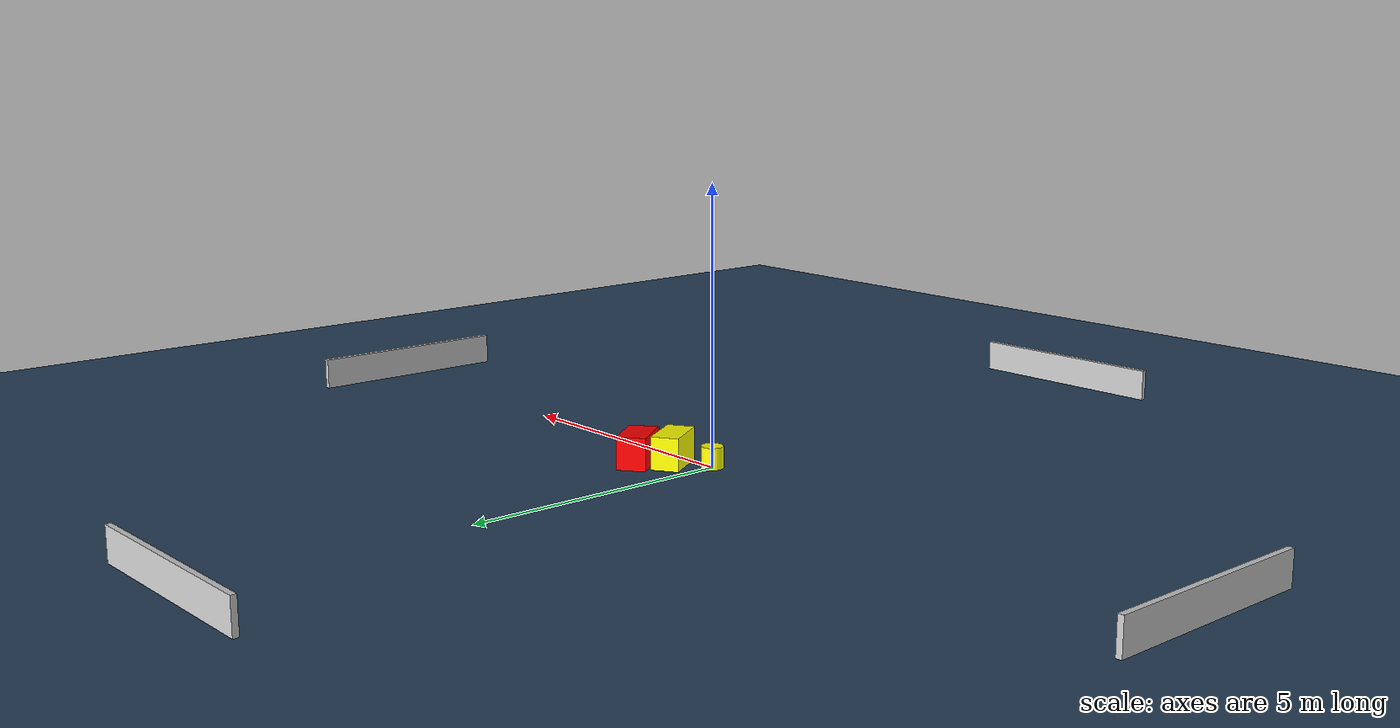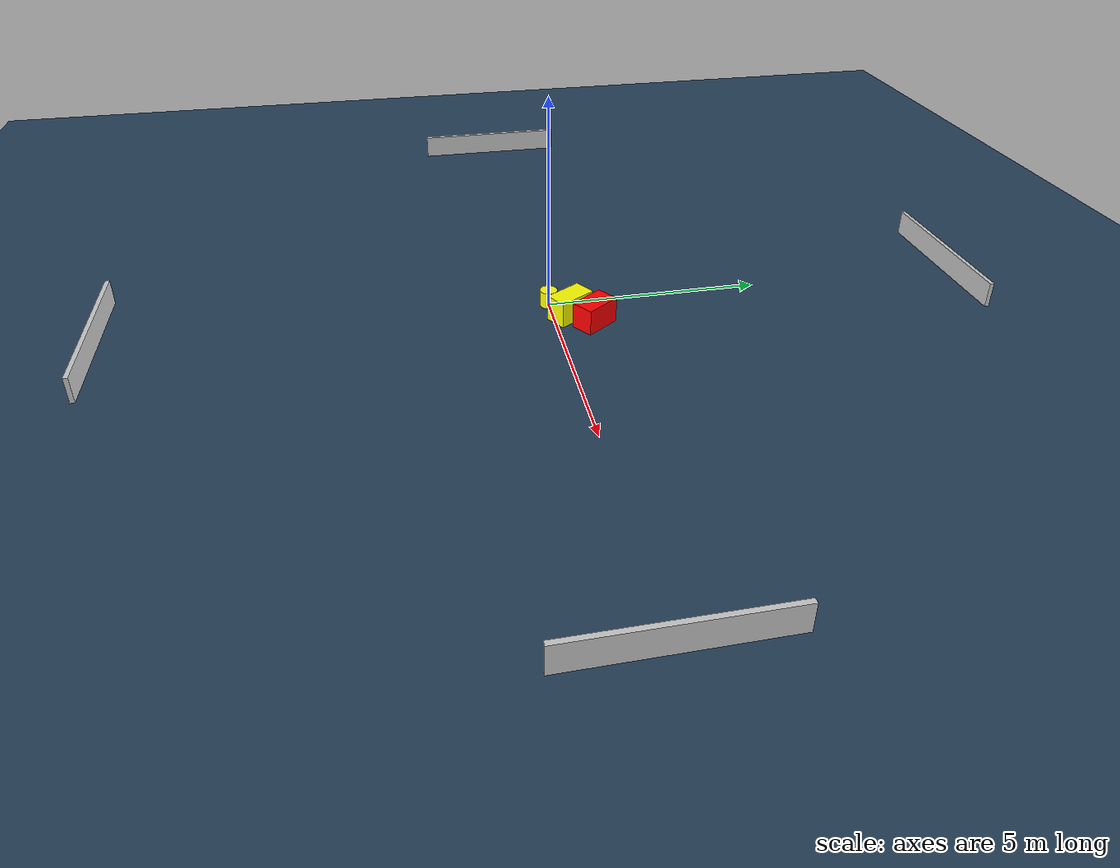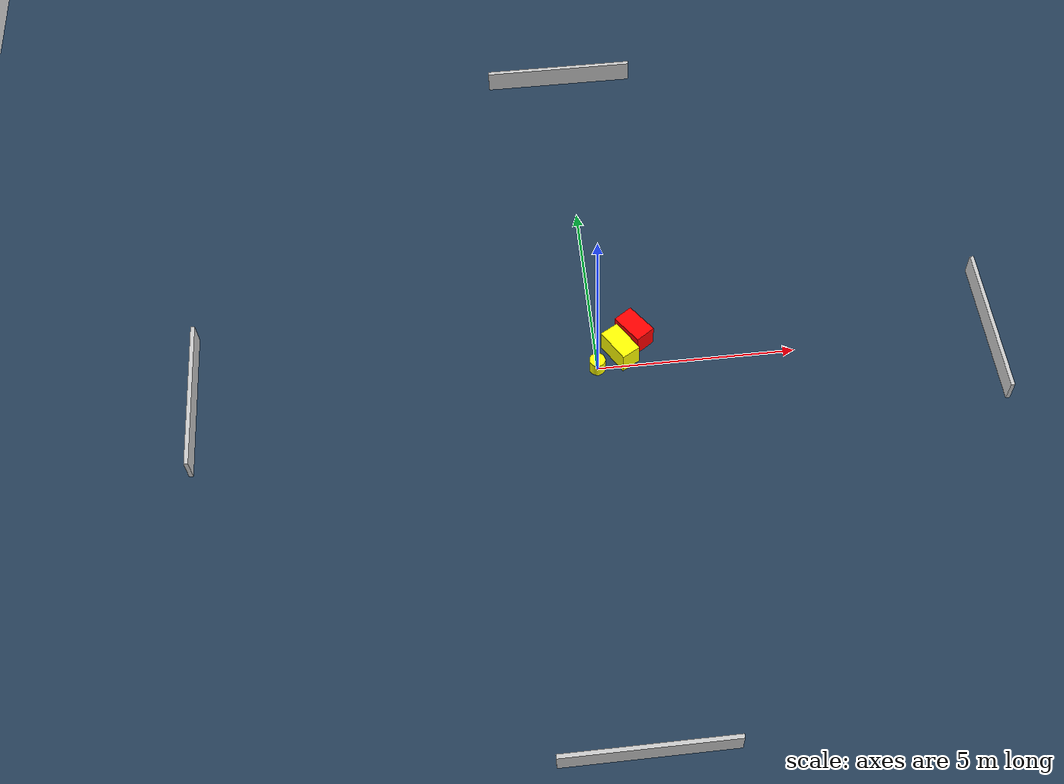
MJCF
<?xml version="1.0" ?>
<mujoco model="generated_environment">
  <option timestep="0.01" integrator="RK4" cone="elliptic"/>
  <default>
    <geom density="1"/>
  </default>
  <asset>
    <texture builtin="gradient" height="3072" name="skybox" rgb1="0.3 0.5 0.7" rgb2="0 0 0" type="skybox" width="512"/>
    <texture builtin="checker" height="300" name="groundplane" rgb1="0.2 0.3 0.4" rgb2="0.1 0.2 0.3" type="2d" width="300"/>
    <material name="groundplane" reflectance="0.2" texrepeat="5 5" texture="groundplane"/>
  </asset>
  <worldbody>
    <light dir="0 0 -1" directional="true" pos="0 0 1.5"/>
    <geom condim="3" friction="0.5 0.005 0.001" material="groundplane" name="floor" pos="0 0 0" size="0 0 0.05" type="plane"/>
    <body name="walls">
      <geom name="wall_1" condim="4" pos="-10.0 0.0 0.3" rgba="0.800000011920929 0.800000011920929 0.800000011920929 1.0" size="0.05 2.0 0.3" type="box"/>
      <geom name="wall_2" condim="4" pos="10.0 0.0 0.3" rgba="0.800000011920929 0.800000011920929 0.800000011920929 1.0" size="0.05 2.0 0.3" type="box"/>
      <geom name="wall_3" condim="4" pos="0.0 -10.0 0.3" rgba="0.800000011920929 0.800000011920929 0.800000011920929 1.0" size="2.0 0.05 0.3" type="box"/>
      <geom name="wall_4" condim="4" pos="0.0 10.0 0.3" rgba="0.800000011920929 0.800000011920929 0.800000011920929 1.0" size="2.0 0.05 0.3" type="box"/>
    </body>
    <body name="robot">
      <joint name="joint_x" type="slide" pos="0 0 0" axis="1 0 0"/>
      <joint name="joint_y" type="slide" pos="0 0 0" axis="0 1 0"/>
      <geom name="robot" type="cylinder" pos="0.0 0.0 0.2" size="0.2 0.2 0.0" mass="5.0" friction="1.0 0.005 0.0001" condim="4" rgba="1.0 1.0 0.0 1.0"/>
    </body>
    <body name="obstacle_1_movable">
      <geom name="obstacle_1_movable" condim="4" pos="0.6152815324282653 0.38086041724664843 0.3" euler="0 0 210.98670544440932" friction="0.0 0.005 0.001" rgba="1.0 1.0 0.0 1.0" size="0.2531804097065422 0.4571099518069453 0.3" type="box" mass="0.1"/>
      <joint type="free"/>
    </body>
    <body name="obstacle_2_static">
      <geom name="obstacle_2_static" condim="4" pos="1.0239943729719923 0.8513966384118618 0.3" euler="0 0 35.15416308286482" friction="0.0 0.005 0.001" rgba="1.0 0.0 0.0 1.0" size="0.26681478399025466 0.4314999895000866 0.3" type="box"/>
    </body>
  </worldbody>
  <actuator>
    <motor name="actuator_x" joint="joint_x" gear="1" ctrlrange="-1 1"/>
    <motor name="actuator_y" joint="joint_y" gear="1" ctrlrange="-1 1"/>
  </actuator>
</mujoco>
